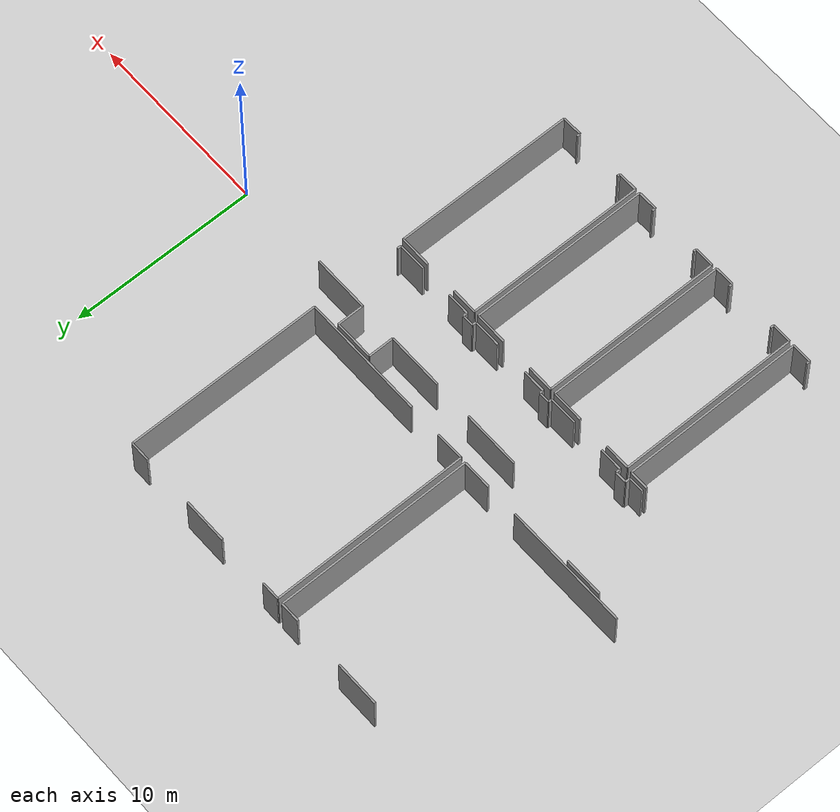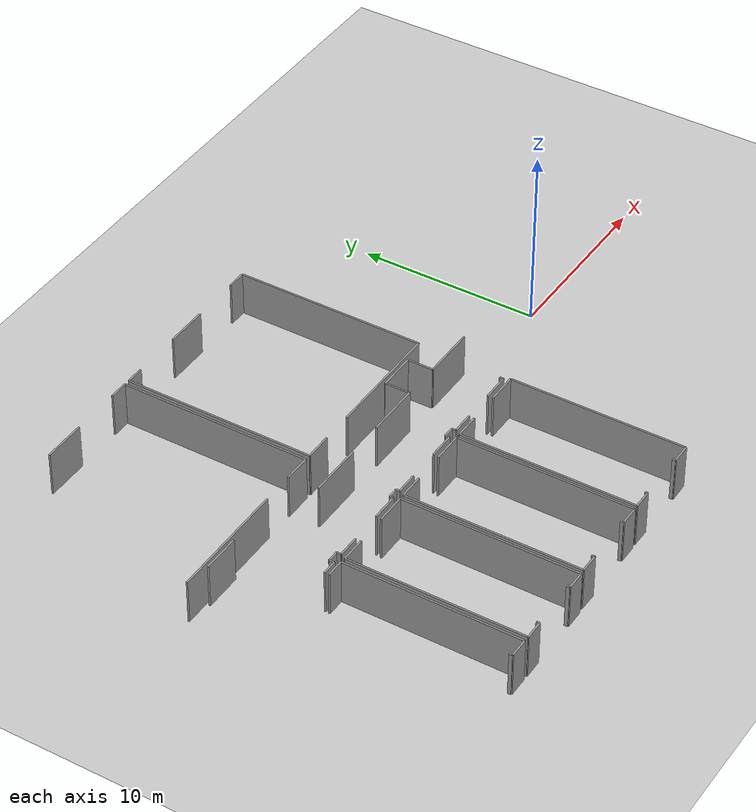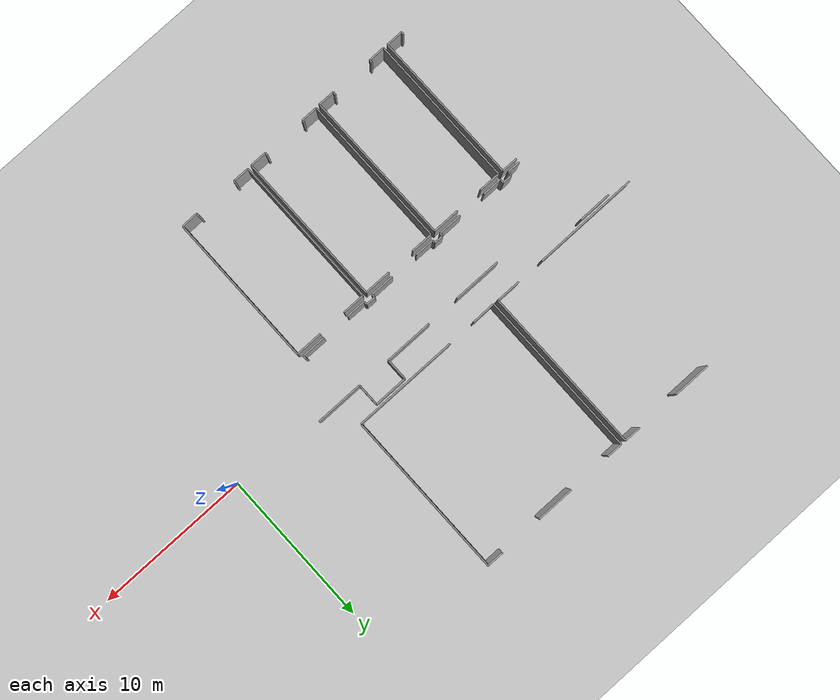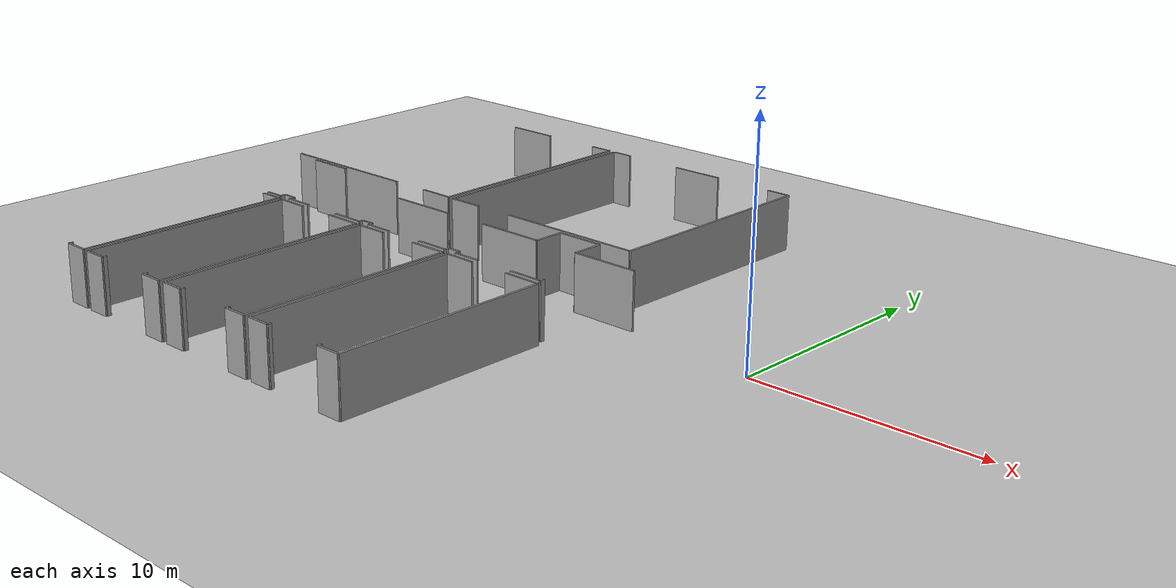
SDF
<sdf version="1.6">
 <world name="default">
  <model name="ground_plane">
   <static>1</static>
   <link name="link">
    <collision name="collision">
     <geometry><plane><normal>0 0 1</normal><size>100 100</size></plane></geometry>
     <surface><friction><ode><mu>100</mu><mu2>50</mu2></ode></friction></surface>
    </collision>
    <visual name="visual">
     <cast_shadows>0</cast_shadows>
     <geometry><plane><normal>0 0 1</normal><size>100 100</size></plane></geometry>
     <material>
      <script><uri>file://media/materials/scripts/gazebo.material</uri><name>Gazebo/Grey</name></script>
     </material>
    </visual>
   </link>
  </model>
  <model name="0510030966_A-40">
   <static>1</static>
   <link name="Wall_35">
    <collision name="Wall_35_Collision">
     <geometry><box><size>3.09247710617 0.1 2.5</size></box></geometry>
     <pose>1.54623855308 0 1.25 0 0 0</pose>
    </collision>
    <visual name="Wall_35_Visual">
     <pose>1.54623855308 0 1.25 0 0 0</pose>
     <geometry><box><size>3.09247710617 0.1 2.5</size></box></geometry>
     <material>
      <script><uri>file://media/materials/scripts/gazebo.material</uri><name>Gazebo/Grey</name></script>
      <ambient>1 1 1 1</ambient>
     </material>
    </visual>
    <pose>19.5244687742 -12.2554710223 0 0 0 0.0</pose>
   </link>
   <link name="Wall_36">
    <collision name="Wall_36_Collision">
     <geometry><box><size>3.08638055199 0.1 2.5</size></box></geometry>
     <pose>1.543190276 0 1.25 0 0 0</pose>
    </collision>
    <visual name="Wall_36_Visual">
     <pose>1.543190276 0 1.25 0 0 0</pose>
     <geometry><box><size>3.08638055199 0.1 2.5</size></box></geometry>
     <material>
      <script><uri>file://media/materials/scripts/gazebo.material</uri><name>Gazebo/Grey</name></script>
      <ambient>1 1 1 1</ambient>
     </material>
    </visual>
    <pose>24.7291478795 -12.2554710223 0 0 0 0.0</pose>
   </link>
   <link name="Wall_37">
    <collision name="Wall_37_Collision">
     <geometry><box><size>1.39217354858 0.1 2.5</size></box></geometry>
     <pose>0.696086774288 0 1.25 0 0 0</pose>
    </collision>
    <visual name="Wall_37_Visual">
     <pose>0.696086774288 0 1.25 0 0 0</pose>
     <geometry><box><size>1.39217354858 0.1 2.5</size></box></geometry>
     <material>
      <script><uri>file://media/materials/scripts/gazebo.material</uri><name>Gazebo/Grey</name></script>
      <ambient>1 1 1 1</ambient>
     </material>
    </visual>
    <pose>27.8155284315 -12.2554710223 0 0 0 1.57079632679</pose>
   </link>
   <link name="Wall_38">
    <collision name="Wall_38_Collision">
     <geometry><box><size>2.14649511641 0.1 2.5</size></box></geometry>
     <pose>1.0732475582 0 1.25 0 0 0</pose>
    </collision>
    <visual name="Wall_38_Visual">
     <pose>1.0732475582 0 1.25 0 0 0</pose>
     <geometry><box><size>2.14649511641 0.1 2.5</size></box></geometry>
     <material>
      <script><uri>file://media/materials/scripts/gazebo.material</uri><name>Gazebo/Grey</name></script>
      <ambient>1 1 1 1</ambient>
     </material>
    </visual>
    <pose>27.8155284315 -10.8632974737 0 0 0 0.0</pose>
   </link>
   <link name="Wall_39">
    <collision name="Wall_39_Collision">
     <geometry><box><size>1.43523046245 0.1 2.5</size></box></geometry>
     <pose>0.717615231225 0 1.25 0 0 0</pose>
    </collision>
    <visual name="Wall_39_Visual">
     <pose>0.717615231225 0 1.25 0 0 0</pose>
     <geometry><box><size>1.43523046245 0.1 2.5</size></box></geometry>
     <material>
      <script><uri>file://media/materials/scripts/gazebo.material</uri><name>Gazebo/Grey</name></script>
      <ambient>1 1 1 1</ambient>
     </material>
    </visual>
    <pose>29.9620235479 -10.8632974737 0 0 0 -1.57079632679</pose>
   </link>
   <link name="Wall_40">
    <collision name="Wall_40_Collision">
     <geometry><box><size>3.04827708839 0.1 2.5</size></box></geometry>
     <pose>1.52413854419 0 1.25 0 0 0</pose>
    </collision>
    <visual name="Wall_40_Visual">
     <pose>1.52413854419 0 1.25 0 0 0</pose>
     <geometry><box><size>3.04827708839 0.1 2.5</size></box></geometry>
     <material>
      <script><uri>file://media/materials/scripts/gazebo.material</uri><name>Gazebo/Grey</name></script>
      <ambient>1 1 1 1</ambient>
     </material>
    </visual>
    <pose>29.9620235479 -12.2985279362 0 0 0 0.0</pose>
   </link>
   <link name="Wall_72">
    <collision name="Wall_72_Collision">
     <geometry><box><size>0.228620781629 0.1 2.5</size></box></geometry>
     <pose>0.114310390815 0 1.25 0 0 0</pose>
    </collision>
    <visual name="Wall_72_Visual">
     <pose>0.114310390815 0 1.25 0 0 0</pose>
     <geometry><box><size>0.228620781629 0.1 2.5</size></box></geometry>
     <material>
      <script><uri>file://media/materials/scripts/gazebo.material</uri><name>Gazebo/Grey</name></script>
      <ambient>1 1 1 1</ambient>
     </material>
    </visual>
    <pose>31.1940355378 -15.4103107973 0 0 0 -1.57079632679</pose>
   </link>
   <link name="Wall_73">
    <collision name="Wall_73_Collision">
     <geometry><box><size>1.54001498736 0.1 2.5</size></box></geometry>
     <pose>0.770007493681 0 1.25 0 0 0</pose>
    </collision>
    <visual name="Wall_73_Visual">
     <pose>0.770007493681 0 1.25 0 0 0</pose>
     <geometry><box><size>1.54001498736 0.1 2.5</size></box></geometry>
     <material>
      <script><uri>file://media/materials/scripts/gazebo.material</uri><name>Gazebo/Grey</name></script>
      <ambient>1 1 1 1</ambient>
     </material>
    </visual>
    <pose>31.1940355378 -15.6389315789 0 0 0 3.14159265359</pose>
   </link>
   <link name="Wall_74">
    <collision name="Wall_74_Collision">
     <geometry><box><size>1.2480154446 0.1 2.5</size></box></geometry>
     <pose>0.624007722302 0 1.25 0 0 0</pose>
    </collision>
    <visual name="Wall_74_Visual">
     <pose>0.624007722302 0 1.25 0 0 0</pose>
     <geometry><box><size>1.2480154446 0.1 2.5</size></box></geometry>
     <material>
      <script><uri>file://media/materials/scripts/gazebo.material</uri><name>Gazebo/Grey</name></script>
      <ambient>1 1 1 1</ambient>
     </material>
    </visual>
    <pose>27.8557910914 -15.6389315789 0 0 0 3.14159265359</pose>
   </link>
   <link name="Wall_75">
    <collision name="Wall_75_Collision">
     <geometry><box><size>0.224810435269 0.1 2.5</size></box></geometry>
     <pose>0.112405217634 0 1.25 0 0 0</pose>
    </collision>
    <visual name="Wall_75_Visual">
     <pose>0.112405217634 0 1.25 0 0 0</pose>
     <geometry><box><size>0.224810435269 0.1 2.5</size></box></geometry>
     <material>
      <script><uri>file://media/materials/scripts/gazebo.material</uri><name>Gazebo/Grey</name></script>
      <ambient>1 1 1 1</ambient>
     </material>
    </visual>
    <pose>26.6077756468 -15.6389315789 0 0 0 1.57079632679</pose>
   </link>
   <link name="Wall_76">
    <collision name="Wall_76_Collision">
     <geometry><box><size>0.618419214307 0.1 2.5</size></box></geometry>
     <pose>0.309209607153 0 1.25 0 0 0</pose>
    </collision>
    <visual name="Wall_76_Visual">
     <pose>0.309209607153 0 1.25 0 0 0</pose>
     <geometry><box><size>0.618419214307 0.1 2.5</size></box></geometry>
     <material>
      <script><uri>file://media/materials/scripts/gazebo.material</uri><name>Gazebo/Grey</name></script>
      <ambient>1 1 1 1</ambient>
     </material>
    </visual>
    <pose>26.6077756468 -15.4141211436 0 0 0 3.14159265359</pose>
   </link>
   <link name="Wall_77">
    <collision name="Wall_77_Collision">
     <geometry><box><size>0.221000088908 0.1 2.5</size></box></geometry>
     <pose>0.110500044454 0 1.25 0 0 0</pose>
    </collision>
    <visual name="Wall_77_Visual">
     <pose>0.110500044454 0 1.25 0 0 0</pose>
     <geometry><box><size>0.221000088908 0.1 2.5</size></box></geometry>
     <material>
      <script><uri>file://media/materials/scripts/gazebo.material</uri><name>Gazebo/Grey</name></script>
      <ambient>1 1 1 1</ambient>
     </material>
    </visual>
    <pose>25.9893564325 -15.4141211436 0 0 0 -1.57079632679</pose>
   </link>
   <link name="Wall_78">
    <collision name="Wall_78_Collision">
     <geometry><box><size>1.49924428131 0.1 2.5</size></box></geometry>
     <pose>0.749622140653 0 1.25 0 0 0</pose>
    </collision>
    <visual name="Wall_78_Visual">
     <pose>0.749622140653 0 1.25 0 0 0</pose>
     <geometry><box><size>1.49924428131 0.1 2.5</size></box></geometry>
     <material>
      <script><uri>file://media/materials/scripts/gazebo.material</uri><name>Gazebo/Grey</name></script>
      <ambient>1 1 1 1</ambient>
     </material>
    </visual>
    <pose>25.9893564325 -15.6351212325 0 0 0 3.14159265359</pose>
   </link>
   <link name="Wall_79">
    <collision name="Wall_79_Collision">
     <geometry><box><size>1.24293498279 0.1 2.5</size></box></geometry>
     <pose>0.621467491395 0 1.25 0 0 0</pose>
    </collision>
    <visual name="Wall_79_Visual">
     <pose>0.621467491395 0 1.25 0 0 0</pose>
     <geometry><box><size>1.24293498279 0.1 2.5</size></box></geometry>
     <material>
      <script><uri>file://media/materials/scripts/gazebo.material</uri><name>Gazebo/Grey</name></script>
      <ambient>1 1 1 1</ambient>
     </material>
    </visual>
    <pose>22.6443803742 -15.6351212325 0 0 0 3.14159265359</pose>
   </link>
   <link name="Wall_80">
    <collision name="Wall_80_Collision">
     <geometry><box><size>0.196232837565 0.1 2.5</size></box></geometry>
     <pose>0.0981164187825 0 1.25 0 0 0</pose>
    </collision>
    <visual name="Wall_80_Visual">
     <pose>0.0981164187825 0 1.25 0 0 0</pose>
     <geometry><box><size>0.196232837565 0.1 2.5</size></box></geometry>
     <material>
      <script><uri>file://media/materials/scripts/gazebo.material</uri><name>Gazebo/Grey</name></script>
      <ambient>1 1 1 1</ambient>
     </material>
    </visual>
    <pose>21.4014453914 -15.6351212325 0 0 0 1.57079632679</pose>
   </link>
   <link name="Wall_81">
    <collision name="Wall_81_Collision">
     <geometry><box><size>0.587936443423 0.1 2.5</size></box></geometry>
     <pose>0.293968221711 0 1.25 0 0 0</pose>
    </collision>
    <visual name="Wall_81_Visual">
     <pose>0.293968221711 0 1.25 0 0 0</pose>
     <geometry><box><size>0.587936443423 0.1 2.5</size></box></geometry>
     <material>
      <script><uri>file://media/materials/scripts/gazebo.material</uri><name>Gazebo/Grey</name></script>
      <ambient>1 1 1 1</ambient>
     </material>
    </visual>
    <pose>21.4014453914 -15.438888395 0 0 0 3.14159265359</pose>
   </link>
   <link name="Wall_82">
    <collision name="Wall_82_Collision">
     <geometry><box><size>0.20156732247 0.1 2.5</size></box></geometry>
     <pose>0.100783661235 0 1.25 0 0 0</pose>
    </collision>
    <visual name="Wall_82_Visual">
     <pose>0.100783661235 0 1.25 0 0 0</pose>
     <geometry><box><size>0.20156732247 0.1 2.5</size></box></geometry>
     <material>
      <script><uri>file://media/materials/scripts/gazebo.material</uri><name>Gazebo/Grey</name></script>
      <ambient>1 1 1 1</ambient>
     </material>
    </visual>
    <pose>20.813508948 -15.438888395 0 0 0 -1.57079632679</pose>
   </link>
   <link name="Wall_83">
    <collision name="Wall_83_Collision">
     <geometry><box><size>1.52820291364 0.1 2.5</size></box></geometry>
     <pose>0.764101456822 0 1.25 0 0 0</pose>
    </collision>
    <visual name="Wall_83_Visual">
     <pose>0.764101456822 0 1.25 0 0 0</pose>
     <geometry><box><size>1.52820291364 0.1 2.5</size></box></geometry>
     <material>
      <script><uri>file://media/materials/scripts/gazebo.material</uri><name>Gazebo/Grey</name></script>
      <ambient>1 1 1 1</ambient>
     </material>
    </visual>
    <pose>20.813508948 -15.6404557174 0 0 0 3.14159265359</pose>
   </link>
   <link name="Wall_84">
    <collision name="Wall_84_Collision">
     <geometry><box><size>1.25804935669 0.1 2.5</size></box></geometry>
     <pose>0.629024678343 0 1.25 0 0 0</pose>
    </collision>
    <visual name="Wall_84_Visual">
     <pose>0.629024678343 0 1.25 0 0 0</pose>
     <geometry><box><size>1.25804935669 0.1 2.5</size></box></geometry>
     <material>
      <script><uri>file://media/materials/scripts/gazebo.material</uri><name>Gazebo/Grey</name></script>
      <ambient>1 1 1 1</ambient>
     </material>
    </visual>
    <pose>17.4691679474 -15.6404557174 0 0 0 3.14159265359</pose>
   </link>
   <link name="Wall_85">
    <collision name="Wall_85_Collision">
     <geometry><box><size>0.252752975245 0.1 2.5</size></box></geometry>
     <pose>0.126376487623 0 1.25 0 0 0</pose>
    </collision>
    <visual name="Wall_85_Visual">
     <pose>0.126376487623 0 1.25 0 0 0</pose>
     <geometry><box><size>0.252752975245 0.1 2.5</size></box></geometry>
     <material>
      <script><uri>file://media/materials/scripts/gazebo.material</uri><name>Gazebo/Grey</name></script>
      <ambient>1 1 1 1</ambient>
     </material>
    </visual>
    <pose>16.2111185907 -15.6404557174 0 0 0 1.57079632679</pose>
   </link>
   <link name="Wall_86">
    <collision name="Wall_86_Collision">
     <geometry><box><size>0.624261745393 0.1 2.5</size></box></geometry>
     <pose>0.312130872696 0 1.25 0 0 0</pose>
    </collision>
    <visual name="Wall_86_Visual">
     <pose>0.312130872696 0 1.25 0 0 0</pose>
     <geometry><box><size>0.624261745393 0.1 2.5</size></box></geometry>
     <material>
      <script><uri>file://media/materials/scripts/gazebo.material</uri><name>Gazebo/Grey</name></script>
      <ambient>1 1 1 1</ambient>
     </material>
    </visual>
    <pose>16.2111185907 -15.3877027422 0 0 0 3.14159265359</pose>
   </link>
   <link name="Wall_87">
    <collision name="Wall_87_Collision">
     <geometry><box><size>0.26901045305 0.1 2.5</size></box></geometry>
     <pose>0.134505226525 0 1.25 0 0 0</pose>
    </collision>
    <visual name="Wall_87_Visual">
     <pose>0.134505226525 0 1.25 0 0 0</pose>
     <geometry><box><size>0.26901045305 0.1 2.5</size></box></geometry>
     <material>
      <script><uri>file://media/materials/scripts/gazebo.material</uri><name>Gazebo/Grey</name></script>
      <ambient>1 1 1 1</ambient>
     </material>
    </visual>
    <pose>15.5868568453 -15.3877027422 0 0 0 -1.57079632679</pose>
   </link>
   <link name="Wall_88">
    <collision name="Wall_88_Collision">
     <geometry><box><size>0.825956079408 0.1 2.5</size></box></geometry>
     <pose>0.412978039704 0 1.25 0 0 0</pose>
    </collision>
    <visual name="Wall_88_Visual">
     <pose>0.412978039704 0 1.25 0 0 0</pose>
     <geometry><box><size>0.825956079408 0.1 2.5</size></box></geometry>
     <material>
      <script><uri>file://media/materials/scripts/gazebo.material</uri><name>Gazebo/Grey</name></script>
      <ambient>1 1 1 1</ambient>
     </material>
    </visual>
    <pose>15.5868568453 -15.6567131952 0 0 0 3.14159265359</pose>
   </link>
   <link name="Wall_109">
    <collision name="Wall_109_Collision">
     <geometry><box><size>2.11283705689 0.1 2.5</size></box></geometry>
     <pose>1.05641852844 0 1.25 0 0 0</pose>
    </collision>
    <visual name="Wall_109_Visual">
     <pose>1.05641852844 0 1.25 0 0 0</pose>
     <geometry><box><size>2.11283705689 0.1 2.5</size></box></geometry>
     <material>
      <script><uri>file://media/materials/scripts/gazebo.material</uri><name>Gazebo/Grey</name></script>
      <ambient>1 1 1 1</ambient>
     </material>
    </visual>
    <pose>14.3575120978 -10.8739664435 0 0 0 3.14159265359</pose>
   </link>
   <link name="Wall_113">
    <collision name="Wall_113_Collision">
     <geometry><box><size>1.02714236724 0.1 2.5</size></box></geometry>
     <pose>0.513571183621 0 1.25 0 0 0</pose>
    </collision>
    <visual name="Wall_113_Visual">
     <pose>0.513571183621 0 1.25 0 0 0</pose>
     <geometry><box><size>1.02714236724 0.1 2.5</size></box></geometry>
     <material>
      <script><uri>file://media/materials/scripts/gazebo.material</uri><name>Gazebo/Grey</name></script>
      <ambient>1 1 1 1</ambient>
     </material>
    </visual>
    <pose>14.7460404151 -15.9013374316 0 0 0 0.0</pose>
   </link>
   <link name="Wall_114">
    <collision name="Wall_114_Collision">
     <geometry><box><size>9.7952573889 0.1 2.5</size></box></geometry>
     <pose>4.89762869445 0 1.25 0 0 0</pose>
    </collision>
    <visual name="Wall_114_Visual">
     <pose>4.89762869445 0 1.25 0 0 0</pose>
     <geometry><box><size>9.7952573889 0.1 2.5</size></box></geometry>
     <material>
      <script><uri>file://media/materials/scripts/gazebo.material</uri><name>Gazebo/Grey</name></script>
      <ambient>1 1 1 1</ambient>
     </material>
    </visual>
    <pose>15.7731827823 -15.9013374316 0 0 0 -1.57079632679</pose>
   </link>
   <link name="Wall_115">
    <collision name="Wall_115_Collision">
     <geometry><box><size>1.07134238502 0.1 2.5</size></box></geometry>
     <pose>0.535671192511 0 1.25 0 0 0</pose>
    </collision>
    <visual name="Wall_115_Visual">
     <pose>0.535671192511 0 1.25 0 0 0</pose>
     <geometry><box><size>1.07134238502 0.1 2.5</size></box></geometry>
     <material>
      <script><uri>file://media/materials/scripts/gazebo.material</uri><name>Gazebo/Grey</name></script>
      <ambient>1 1 1 1</ambient>
     </material>
    </visual>
    <pose>15.7731827823 -25.6965948205 0 0 0 3.14159265359</pose>
   </link>
   <link name="Wall_116">
    <collision name="Wall_116_Collision">
     <geometry><box><size>0.187723064027 0.1 2.5</size></box></geometry>
     <pose>0.0938615320133 0 1.25 0 0 0</pose>
    </collision>
    <visual name="Wall_116_Visual">
     <pose>0.0938615320133 0 1.25 0 0 0</pose>
     <geometry><box><size>0.187723064027 0.1 2.5</size></box></geometry>
     <material>
      <script><uri>file://media/materials/scripts/gazebo.material</uri><name>Gazebo/Grey</name></script>
      <ambient>1 1 1 1</ambient>
     </material>
    </visual>
    <pose>14.7018403973 -25.6965948205 0 0 0 1.57079632679</pose>
   </link>
   <link name="Wall_119">
    <collision name="Wall_119_Collision">
     <geometry><box><size>9.77303036846 0.1 2.5</size></box></geometry>
     <pose>4.88651518423 0 1.25 0 0 0</pose>
    </collision>
    <visual name="Wall_119_Visual">
     <pose>4.88651518423 0 1.25 0 0 0</pose>
     <geometry><box><size>9.77303036846 0.1 2.5</size></box></geometry>
     <material>
      <script><uri>file://media/materials/scripts/gazebo.material</uri><name>Gazebo/Grey</name></script>
      <ambient>1 1 1 1</ambient>
     </material>
    </visual>
    <pose>16.0636581865 -25.710693102 0 0 0 1.57079632679</pose>
   </link>
   <link name="Wall_120">
    <collision name="Wall_120_Collision">
     <geometry><box><size>1.3997942413 0.1 2.5</size></box></geometry>
     <pose>0.699897120648 0 1.25 0 0 0</pose>
    </collision>
    <visual name="Wall_120_Visual">
     <pose>0.699897120648 0 1.25 0 0 0</pose>
     <geometry><box><size>1.3997942413 0.1 2.5</size></box></geometry>
     <material>
      <script><uri>file://media/materials/scripts/gazebo.material</uri><name>Gazebo/Grey</name></script>
      <ambient>1 1 1 1</ambient>
     </material>
    </visual>
    <pose>16.0636581865 -15.9376627335 0 0 0 0.0</pose>
   </link>
   <link name="Wall_121">
    <collision name="Wall_121_Collision">
     <geometry><box><size>1.72875414375 0.1 2.5</size></box></geometry>
     <pose>0.864377071876 0 1.25 0 0 0</pose>
    </collision>
    <visual name="Wall_121_Visual">
     <pose>0.864377071876 0 1.25 0 0 0</pose>
     <geometry><box><size>1.72875414375 0.1 2.5</size></box></geometry>
     <material>
      <script><uri>file://media/materials/scripts/gazebo.material</uri><name>Gazebo/Grey</name></script>
      <ambient>1 1 1 1</ambient>
     </material>
    </visual>
    <pose>19.2362795778 -15.9376627335 0 0 0 0.0</pose>
   </link>
   <link name="Wall_122">
    <collision name="Wall_122_Collision">
     <geometry><box><size>9.78395336136 0.1 2.5</size></box></geometry>
     <pose>4.89197668068 0 1.25 0 0 0</pose>
    </collision>
    <visual name="Wall_122_Visual">
     <pose>4.89197668068 0 1.25 0 0 0</pose>
     <geometry><box><size>9.78395336136 0.1 2.5</size></box></geometry>
     <material>
      <script><uri>file://media/materials/scripts/gazebo.material</uri><name>Gazebo/Grey</name></script>
      <ambient>1 1 1 1</ambient>
     </material>
    </visual>
    <pose>20.9650337216 -15.9376627335 0 0 0 -1.57079632679</pose>
   </link>
   <link name="Wall_123">
    <collision name="Wall_123_Collision">
     <geometry><box><size>1.0597843344 0.1 2.5</size></box></geometry>
     <pose>0.529892167198 0 1.25 0 0 0</pose>
    </collision>
    <visual name="Wall_123_Visual">
     <pose>0.529892167198 0 1.25 0 0 0</pose>
     <geometry><box><size>1.0597843344 0.1 2.5</size></box></geometry>
     <material>
      <script><uri>file://media/materials/scripts/gazebo.material</uri><name>Gazebo/Grey</name></script>
      <ambient>1 1 1 1</ambient>
     </material>
    </visual>
    <pose>20.9650337216 -25.7216160949 0 0 0 3.14159265359</pose>
   </link>
   <link name="Wall_124">
    <collision name="Wall_124_Collision">
     <geometry><box><size>0.194581687475 0.1 2.5</size></box></geometry>
     <pose>0.0972908437377 0 1.25 0 0 0</pose>
    </collision>
    <visual name="Wall_124_Visual">
     <pose>0.0972908437377 0 1.25 0 0 0</pose>
     <geometry><box><size>0.194581687475 0.1 2.5</size></box></geometry>
     <material>
      <script><uri>file://media/materials/scripts/gazebo.material</uri><name>Gazebo/Grey</name></script>
      <ambient>1 1 1 1</ambient>
     </material>
    </visual>
    <pose>19.9052493872 -25.7216160949 0 0 0 1.57079632679</pose>
   </link>
   <link name="Wall_125">
    <collision name="Wall_125_Collision">
     <geometry><box><size>0.175275932582 0.1 2.5</size></box></geometry>
     <pose>0.0876379662911 0 1.25 0 0 0</pose>
    </collision>
    <visual name="Wall_125_Visual">
     <pose>0.0876379662911 0 1.25 0 0 0</pose>
     <geometry><box><size>0.175275932582 0.1 2.5</size></box></geometry>
     <material>
      <script><uri>file://media/materials/scripts/gazebo.material</uri><name>Gazebo/Grey</name></script>
      <ambient>1 1 1 1</ambient>
     </material>
    </visual>
    <pose>17.1159488397 -25.5270344074 0 0 0 -1.57079632679</pose>
   </link>
   <link name="Wall_126">
    <collision name="Wall_126_Collision">
     <geometry><box><size>1.05232404209 0.1 2.5</size></box></geometry>
     <pose>0.526162021043 0 1.25 0 0 0</pose>
    </collision>
    <visual name="Wall_126_Visual">
     <pose>0.526162021043 0 1.25 0 0 0</pose>
     <geometry><box><size>1.05232404209 0.1 2.5</size></box></geometry>
     <material>
      <script><uri>file://media/materials/scripts/gazebo.material</uri><name>Gazebo/Grey</name></script>
      <ambient>1 1 1 1</ambient>
     </material>
    </visual>
    <pose>17.1159488397 -25.70231034 0 0 0 -3.13362661811</pose>
   </link>
   <link name="Wall_127">
    <collision name="Wall_127_Collision">
     <geometry><box><size>9.75029530184 0.1 2.5</size></box></geometry>
     <pose>4.87514765092 0 1.25 0 0 0</pose>
    </collision>
    <visual name="Wall_127_Visual">
     <pose>4.87514765092 0 1.25 0 0 0</pose>
     <geometry><box><size>9.75029530184 0.1 2.5</size></box></geometry>
     <material>
      <script><uri>file://media/materials/scripts/gazebo.material</uri><name>Gazebo/Grey</name></script>
      <ambient>1 1 1 1</ambient>
     </material>
    </visual>
    <pose>21.2363303824 -25.685544816 0 0 0 1.57079632679</pose>
   </link>
   <link name="Wall_128">
    <collision name="Wall_128_Collision">
     <geometry><box><size>1.41897298464 0.1 2.5</size></box></geometry>
     <pose>0.709486492322 0 1.25 0 0 0</pose>
    </collision>
    <visual name="Wall_128_Visual">
     <pose>0.709486492322 0 1.25 0 0 0</pose>
     <geometry><box><size>1.41897298464 0.1 2.5</size></box></geometry>
     <material>
      <script><uri>file://media/materials/scripts/gazebo.material</uri><name>Gazebo/Grey</name></script>
      <ambient>1 1 1 1</ambient>
     </material>
    </visual>
    <pose>21.2363303824 -15.9352495142 0 0 0 0.0</pose>
   </link>
   <link name="Wall_129">
    <collision name="Wall_129_Collision">
     <geometry><box><size>1.7384070212 0.1 2.5</size></box></geometry>
     <pose>0.869203510599 0 1.25 0 0 0</pose>
    </collision>
    <visual name="Wall_129_Visual">
     <pose>0.869203510599 0 1.25 0 0 0</pose>
     <geometry><box><size>1.7384070212 0.1 2.5</size></box></geometry>
     <material>
      <script><uri>file://media/materials/scripts/gazebo.material</uri><name>Gazebo/Grey</name></script>
      <ambient>1 1 1 1</ambient>
     </material>
    </visual>
    <pose>24.4415937409 -15.9352495142 0 0 0 0.0</pose>
   </link>
   <link name="Wall_130">
    <collision name="Wall_130_Collision">
     <geometry><box><size>9.76706082583 0.1 2.5</size></box></geometry>
     <pose>4.88353041291 0 1.25 0 0 0</pose>
    </collision>
    <visual name="Wall_130_Visual">
     <pose>4.88353041291 0 1.25 0 0 0</pose>
     <geometry><box><size>9.76706082583 0.1 2.5</size></box></geometry>
     <material>
      <script><uri>file://media/materials/scripts/gazebo.material</uri><name>Gazebo/Grey</name></script>
      <ambient>1 1 1 1</ambient>
     </material>
    </visual>
    <pose>26.1800007621 -15.9352495142 0 0 0 -1.57079632679</pose>
   </link>
   <link name="Wall_131">
    <collision name="Wall_131_Collision">
     <geometry><box><size>1.07197744275 0.1 2.5</size></box></geometry>
     <pose>0.535988721375 0 1.25 0 0 0</pose>
    </collision>
    <visual name="Wall_131_Visual">
     <pose>0.535988721375 0 1.25 0 0 0</pose>
     <geometry><box><size>1.07197744275 0.1 2.5</size></box></geometry>
     <material>
      <script><uri>file://media/materials/scripts/gazebo.material</uri><name>Gazebo/Grey</name></script>
      <ambient>1 1 1 1</ambient>
     </material>
    </visual>
    <pose>26.1800007621 -25.70231034 0 0 0 3.14159265359</pose>
   </link>
   <link name="Wall_132">
    <collision name="Wall_132_Collision">
     <geometry><box><size>0.183658694575 0.1 2.5</size></box></geometry>
     <pose>0.0918293472877 0 1.25 0 0 0</pose>
    </collision>
    <visual name="Wall_132_Visual">
     <pose>0.0918293472877 0 1.25 0 0 0</pose>
     <geometry><box><size>0.183658694575 0.1 2.5</size></box></geometry>
     <material>
      <script><uri>file://media/materials/scripts/gazebo.material</uri><name>Gazebo/Grey</name></script>
      <ambient>1 1 1 1</ambient>
     </material>
    </visual>
    <pose>25.1080233193 -25.70231034 0 0 0 1.57079632679</pose>
   </link>
   <link name="Wall_133">
    <collision name="Wall_133_Collision">
     <geometry><box><size>0.175402944128 0.1 2.5</size></box></geometry>
     <pose>0.0877014720638 0 1.25 0 0 0</pose>
    </collision>
    <visual name="Wall_133_Visual">
     <pose>0.0877014720638 0 1.25 0 0 0</pose>
     <geometry><box><size>0.175402944128 0.1 2.5</size></box></geometry>
     <material>
      <script><uri>file://media/materials/scripts/gazebo.material</uri><name>Gazebo/Grey</name></script>
      <ambient>1 1 1 1</ambient>
     </material>
    </visual>
    <pose>22.3020842595 -25.5186516454 0 0 0 -1.57079632679</pose>
   </link>
   <link name="Wall_134">
    <collision name="Wall_134_Collision">
     <geometry><box><size>1.06578785067 0.1 2.5</size></box></geometry>
     <pose>0.532893925337 0 1.25 0 0 0</pose>
    </collision>
    <visual name="Wall_134_Visual">
     <pose>0.532893925337 0 1.25 0 0 0</pose>
     <geometry><box><size>1.06578785067 0.1 2.5</size></box></geometry>
     <material>
      <script><uri>file://media/materials/scripts/gazebo.material</uri><name>Gazebo/Grey</name></script>
      <ambient>1 1 1 1</ambient>
     </material>
    </visual>
    <pose>22.3020842595 -25.6940545896 0 0 0 3.13360807771</pose>
   </link>
   <link name="Wall_135">
    <collision name="Wall_135_Collision">
     <geometry><box><size>9.76299645638 0.1 2.5</size></box></geometry>
     <pose>4.88149822819 0 1.25 0 0 0</pose>
    </collision>
    <visual name="Wall_135_Visual">
     <pose>4.88149822819 0 1.25 0 0 0</pose>
     <geometry><box><size>9.76299645638 0.1 2.5</size></box></geometry>
     <material>
      <script><uri>file://media/materials/scripts/gazebo.material</uri><name>Gazebo/Grey</name></script>
      <ambient>1 1 1 1</ambient>
     </material>
    </visual>
    <pose>31.3845528559 -25.6982459706 0 0 0 1.57079632679</pose>
   </link>
   <link name="Wall_136">
    <collision name="Wall_136_Collision">
     <geometry><box><size>1.71833919703 0.1 2.5</size></box></geometry>
     <pose>0.859169598517 0 1.25 0 0 0</pose>
    </collision>
    <visual name="Wall_136_Visual">
     <pose>0.859169598517 0 1.25 0 0 0</pose>
     <geometry><box><size>1.71833919703 0.1 2.5</size></box></geometry>
     <material>
      <script><uri>file://media/materials/scripts/gazebo.material</uri><name>Gazebo/Grey</name></script>
      <ambient>1 1 1 1</ambient>
     </material>
    </visual>
    <pose>31.3845528559 -15.9352495142 0 0 0 3.14159265359</pose>
   </link>
   <link name="Wall_137">
    <collision name="Wall_137_Collision">
     <geometry><box><size>1.41363849974 0.1 2.5</size></box></geometry>
     <pose>0.70681924987 0 1.25 0 0 0</pose>
    </collision>
    <visual name="Wall_137_Visual">
     <pose>0.70681924987 0 1.25 0 0 0</pose>
     <geometry><box><size>1.41363849974 0.1 2.5</size></box></geometry>
     <material>
      <script><uri>file://media/materials/scripts/gazebo.material</uri><name>Gazebo/Grey</name></script>
      <ambient>1 1 1 1</ambient>
     </material>
    </visual>
    <pose>27.8557910914 -15.9352495142 0 0 0 3.14159265359</pose>
   </link>
   <link name="Wall_138">
    <collision name="Wall_138_Collision">
     <geometry><box><size>9.74788208248 0.1 2.5</size></box></geometry>
     <pose>4.87394104124 0 1.25 0 0 0</pose>
    </collision>
    <visual name="Wall_138_Visual">
     <pose>4.87394104124 0 1.25 0 0 0</pose>
     <geometry><box><size>9.74788208248 0.1 2.5</size></box></geometry>
     <material>
      <script><uri>file://media/materials/scripts/gazebo.material</uri><name>Gazebo/Grey</name></script>
      <ambient>1 1 1 1</ambient>
     </material>
    </visual>
    <pose>26.4421525917 -15.9352495142 0 0 0 -1.57079632679</pose>
   </link>
   <link name="Wall_139">
    <collision name="Wall_139_Collision">
     <geometry><box><size>1.06308663458 0.1 2.5</size></box></geometry>
     <pose>0.531543317288 0 1.25 0 0 0</pose>
    </collision>
    <visual name="Wall_139_Visual">
     <pose>0.531543317288 0 1.25 0 0 0</pose>
     <geometry><box><size>1.06308663458 0.1 2.5</size></box></geometry>
     <material>
      <script><uri>file://media/materials/scripts/gazebo.material</uri><name>Gazebo/Grey</name></script>
      <ambient>1 1 1 1</ambient>
     </material>
    </visual>
    <pose>26.4421525917 -25.6831315967 0 0 0 0.0</pose>
   </link>
   <link name="Wall_140">
    <collision name="Wall_140_Collision">
     <geometry><box><size>0.153683969873 0.1 2.5</size></box></geometry>
     <pose>0.0768419849364 0 1.25 0 0 0</pose>
    </collision>
    <visual name="Wall_140_Visual">
     <pose>0.0768419849364 0 1.25 0 0 0</pose>
     <geometry><box><size>0.153683969873 0.1 2.5</size></box></geometry>
     <material>
      <script><uri>file://media/materials/scripts/gazebo.material</uri><name>Gazebo/Grey</name></script>
      <ambient>1 1 1 1</ambient>
     </material>
    </visual>
    <pose>27.5052392262 -25.6831315967 0 0 0 1.57079632679</pose>
   </link>
   <link name="Wall_141">
    <collision name="Wall_141_Collision">
     <geometry><box><size>0.182515590667 0.1 2.5</size></box></geometry>
     <pose>0.0912577953336 0 1.25 0 0 0</pose>
    </collision>
    <visual name="Wall_141_Visual">
     <pose>0.0912577953336 0 1.25 0 0 0</pose>
     <geometry><box><size>0.182515590667 0.1 2.5</size></box></geometry>
     <material>
      <script><uri>file://media/materials/scripts/gazebo.material</uri><name>Gazebo/Grey</name></script>
      <ambient>1 1 1 1</ambient>
     </material>
    </visual>
    <pose>30.2904754042 -25.5294476268 0 0 0 -1.57079632679</pose>
   </link>
   <link name="Wall_142">
    <collision name="Wall_142_Collision">
     <geometry><box><size>1.09416343983 0.1 2.5</size></box></geometry>
     <pose>0.547081719913 0 1.25 0 0 0</pose>
    </collision>
    <visual name="Wall_142_Visual">
     <pose>0.547081719913 0 1.25 0 0 0</pose>
     <geometry><box><size>1.09416343983 0.1 2.5</size></box></geometry>
     <material>
      <script><uri>file://media/materials/scripts/gazebo.material</uri><name>Gazebo/Grey</name></script>
      <ambient>1 1 1 1</ambient>
     </material>
    </visual>
    <pose>30.2904754042 -25.7119632175 0 0 0 0.0125370723852</pose>
   </link>
   <link name="Wall_302">
    <collision name="Wall_302_Collision">
     <geometry><box><size>10.6354387614 0.1 2.5</size></box></geometry>
     <pose>5.31771938069 0 1.25 0 0 0</pose>
    </collision>
    <visual name="Wall_302_Visual">
     <pose>5.31771938069 0 1.25 0 0 0</pose>
     <geometry><box><size>10.6354387614 0.1 2.5</size></box></geometry>
     <material>
      <script><uri>file://media/materials/scripts/gazebo.material</uri><name>Gazebo/Grey</name></script>
      <ambient>1 1 1 1</ambient>
     </material>
    </visual>
    <pose>21.2617326915 -10.6473778466 0 0 0 1.57079632679</pose>
   </link>
   <link name="Wall_303">
    <collision name="Wall_303_Collision">
     <geometry><box><size>1.00948776244 0.1 2.5</size></box></geometry>
     <pose>0.504743881219 0 1.25 0 0 0</pose>
    </collision>
    <visual name="Wall_303_Visual">
     <pose>0.504743881219 0 1.25 0 0 0</pose>
     <geometry><box><size>1.00948776244 0.1 2.5</size></box></geometry>
     <material>
      <script><uri>file://media/materials/scripts/gazebo.material</uri><name>Gazebo/Grey</name></script>
      <ambient>1 1 1 1</ambient>
     </material>
    </visual>
    <pose>21.2617326915 -0.0119390852629 0 0 0 0.0</pose>
   </link>
   <link name="Wall_304">
    <collision name="Wall_304_Collision">
     <geometry><box><size>2.43112798953 0.1 2.5</size></box></geometry>
     <pose>1.21556399477 0 1.25 0 0 0</pose>
    </collision>
    <visual name="Wall_304_Visual">
     <pose>1.21556399477 0 1.25 0 0 0</pose>
     <geometry><box><size>2.43112798953 0.1 2.5</size></box></geometry>
     <material>
      <script><uri>file://media/materials/scripts/gazebo.material</uri><name>Gazebo/Grey</name></script>
      <ambient>1 1 1 1</ambient>
     </material>
    </visual>
    <pose>25.0669985902 -0.0119390852629 0 0 0 0.0</pose>
   </link>
   <link name="Wall_305">
    <collision name="Wall_305_Collision">
     <geometry><box><size>1.08607572428 0.1 2.5</size></box></geometry>
     <pose>0.543037862142 0 1.25 0 0 0</pose>
    </collision>
    <visual name="Wall_305_Visual">
     <pose>0.543037862142 0 1.25 0 0 0</pose>
     <geometry><box><size>1.08607572428 0.1 2.5</size></box></geometry>
     <material>
      <script><uri>file://media/materials/scripts/gazebo.material</uri><name>Gazebo/Grey</name></script>
      <ambient>1 1 1 1</ambient>
     </material>
    </visual>
    <pose>30.2640570028 -0.0119390852629 0 0 0 0.0</pose>
   </link>
   <link name="Wall_306">
    <collision name="Wall_306_Collision">
     <geometry><box><size>10.6165140411 0.1 2.5</size></box></geometry>
     <pose>5.30825702056 0 1.25 0 0 0</pose>
    </collision>
    <visual name="Wall_306_Visual">
     <pose>5.30825702056 0 1.25 0 0 0</pose>
     <geometry><box><size>10.6165140411 0.1 2.5</size></box></geometry>
     <material>
      <script><uri>file://media/materials/scripts/gazebo.material</uri><name>Gazebo/Grey</name></script>
      <ambient>1 1 1 1</ambient>
     </material>
    </visual>
    <pose>31.3501327271 -0.0119390852629 0 0 0 -1.57079632679</pose>
   </link>
   <link name="Wall_307">
    <collision name="Wall_307_Collision">
     <geometry><box><size>6.74316995415 0.1 2.5</size></box></geometry>
     <pose>3.37158497707 0 1.25 0 0 0</pose>
    </collision>
    <visual name="Wall_307_Visual">
     <pose>3.37158497707 0 1.25 0 0 0</pose>
     <geometry><box><size>6.74316995415 0.1 2.5</size></box></geometry>
     <material>
      <script><uri>file://media/materials/scripts/gazebo.material</uri><name>Gazebo/Grey</name></script>
      <ambient>1 1 1 1</ambient>
     </material>
    </visual>
    <pose>31.3501327271 -10.6284531264 0 0 0 3.14159265359</pose>
   </link>
   <link name="Wall_308">
    <collision name="Wall_308_Collision">
     <geometry><box><size>1.54737037677 0.1 2.5</size></box></geometry>
     <pose>0.773685188383 0 1.25 0 0 0</pose>
    </collision>
    <visual name="Wall_308_Visual">
     <pose>0.773685188383 0 1.25 0 0 0</pose>
     <geometry><box><size>1.54737037677 0.1 2.5</size></box></geometry>
     <material>
      <script><uri>file://media/materials/scripts/gazebo.material</uri><name>Gazebo/Grey</name></script>
      <ambient>1 1 1 1</ambient>
     </material>
    </visual>
    <pose>22.8089873369 -10.6284531264 0 0 0 -3.12936210274</pose>
   </link>
   <link name="Wall_312">
    <collision name="Wall_312_Collision">
     <geometry><box><size>2.42185614672 0.1 2.5</size></box></geometry>
     <pose>1.21092807336 0 1.25 0 0 0</pose>
    </collision>
    <visual name="Wall_312_Visual">
     <pose>1.21092807336 0 1.25 0 0 0</pose>
     <geometry><box><size>2.42185614672 0.1 2.5</size></box></geometry>
     <material>
      <script><uri>file://media/materials/scripts/gazebo.material</uri><name>Gazebo/Grey</name></script>
      <ambient>1 1 1 1</ambient>
     </material>
    </visual>
    <pose>14.6774541806 -0.0 0 0 0 0.0</pose>
   </link>
   <link name="Wall_313">
    <collision name="Wall_313_Collision">
     <geometry><box><size>1.07731192765 0.1 2.5</size></box></geometry>
     <pose>0.538655963827 0 1.25 0 0 0</pose>
    </collision>
    <visual name="Wall_313_Visual">
     <pose>0.538655963827 0 1.25 0 0 0</pose>
     <geometry><box><size>1.07731192765 0.1 2.5</size></box></geometry>
     <material>
      <script><uri>file://media/materials/scripts/gazebo.material</uri><name>Gazebo/Grey</name></script>
      <ambient>1 1 1 1</ambient>
     </material>
    </visual>
    <pose>19.8718453507 -0.0 0 0 0 0.0</pose>
   </link>
   <link name="Wall_314">
    <collision name="Wall_314_Collision">
     <geometry><box><size>10.6219755376 0.1 2.5</size></box></geometry>
     <pose>5.31098776879 0 1.25 0 0 0</pose>
    </collision>
    <visual name="Wall_314_Visual">
     <pose>5.31098776879 0 1.25 0 0 0</pose>
     <geometry><box><size>10.6219755376 0.1 2.5</size></box></geometry>
     <material>
      <script><uri>file://media/materials/scripts/gazebo.material</uri><name>Gazebo/Grey</name></script>
      <ambient>1 1 1 1</ambient>
     </material>
    </visual>
    <pose>20.9491572784 -0.0 0 0 0 -1.57079632679</pose>
   </link>
   <link name="Wall_315">
    <collision name="Wall_315_Collision">
     <geometry><box><size>1.56998971206 0.1 2.5</size></box></geometry>
     <pose>0.784994856032 0 1.25 0 0 0</pose>
    </collision>
    <visual name="Wall_315_Visual">
     <pose>0.784994856032 0 1.25 0 0 0</pose>
     <geometry><box><size>1.56998971206 0.1 2.5</size></box></geometry>
     <material>
      <script><uri>file://media/materials/scripts/gazebo.material</uri><name>Gazebo/Grey</name></script>
      <ambient>1 1 1 1</ambient>
     </material>
    </visual>
    <pose>20.9491572784 -10.6219755376 0 0 0 3.14159265359</pose>
   </link>
   <link name="Wall_316">
    <collision name="Wall_316_Collision">
     <geometry><box><size>6.75757242079 0.1 2.5</size></box></geometry>
     <pose>3.3787862104 0 1.25 0 0 0</pose>
    </collision>
    <visual name="Wall_316_Visual">
     <pose>3.3787862104 0 1.25 0 0 0</pose>
     <geometry><box><size>6.75757242079 0.1 2.5</size></box></geometry>
     <material>
      <script><uri>file://media/materials/scripts/gazebo.material</uri><name>Gazebo/Grey</name></script>
      <ambient>1 1 1 1</ambient>
     </material>
    </visual>
    <pose>17.6036731739 -10.6219755376 0 0 0 -3.13773957891</pose>
   </link>
   <pose>-38.95 12.877458626 0 0 0 0</pose>
  </model>
 </world>
</sdf>
